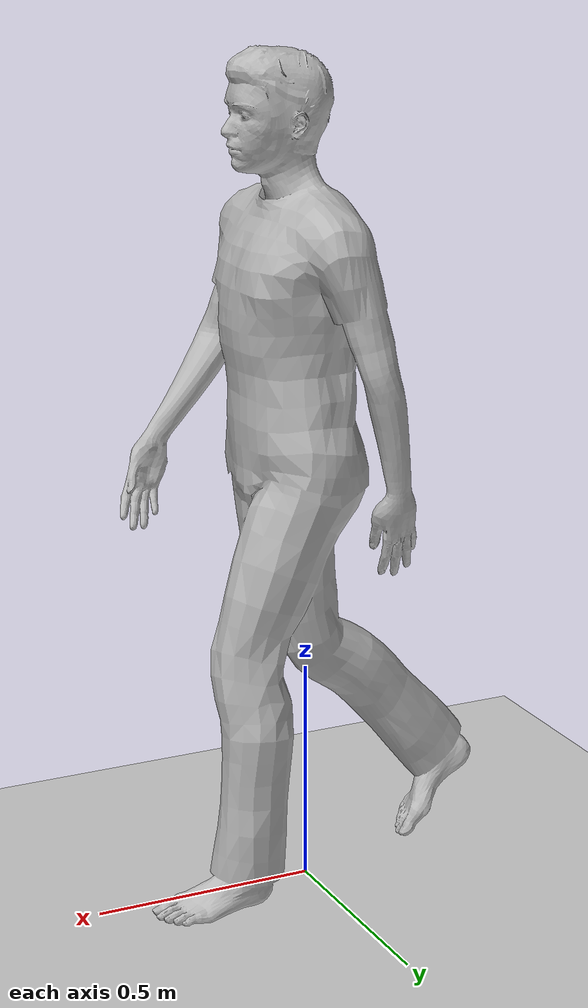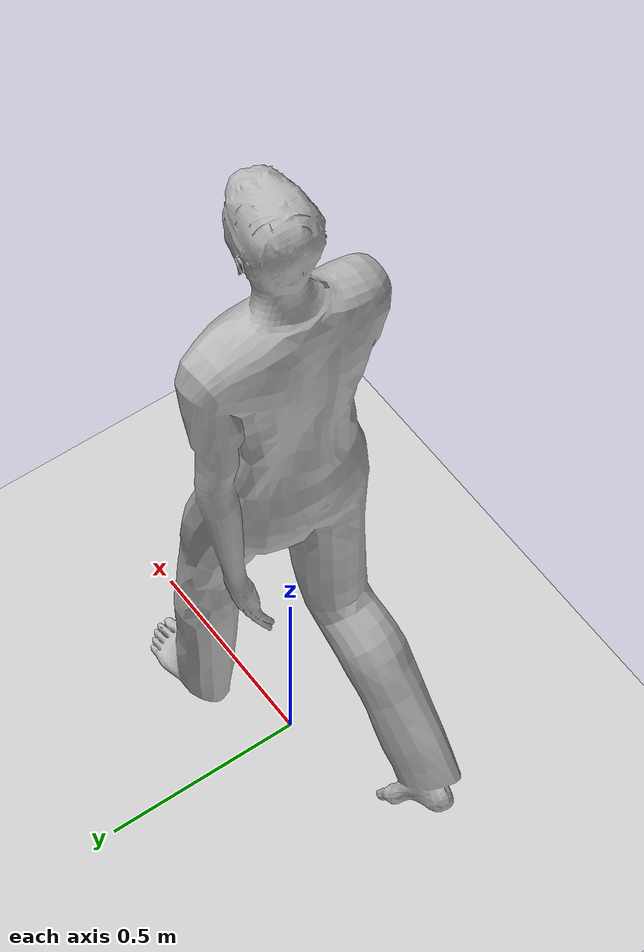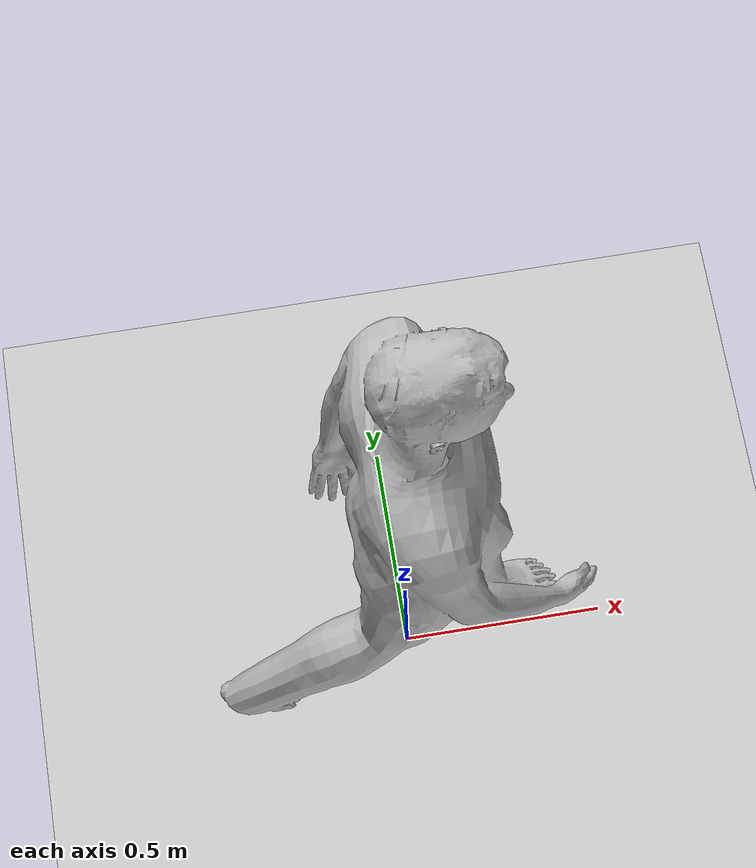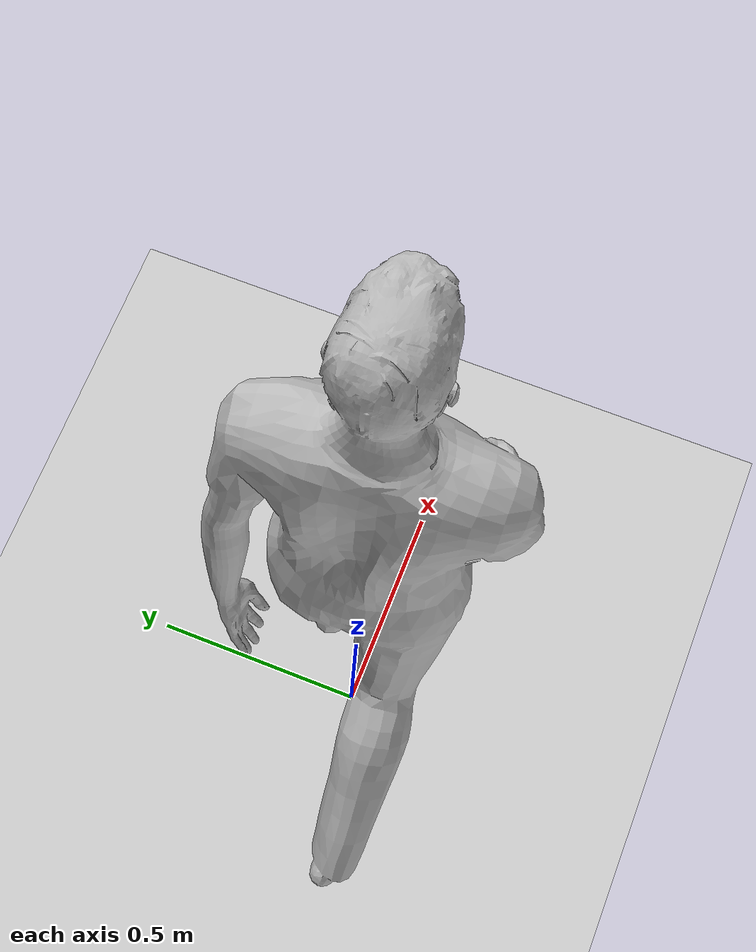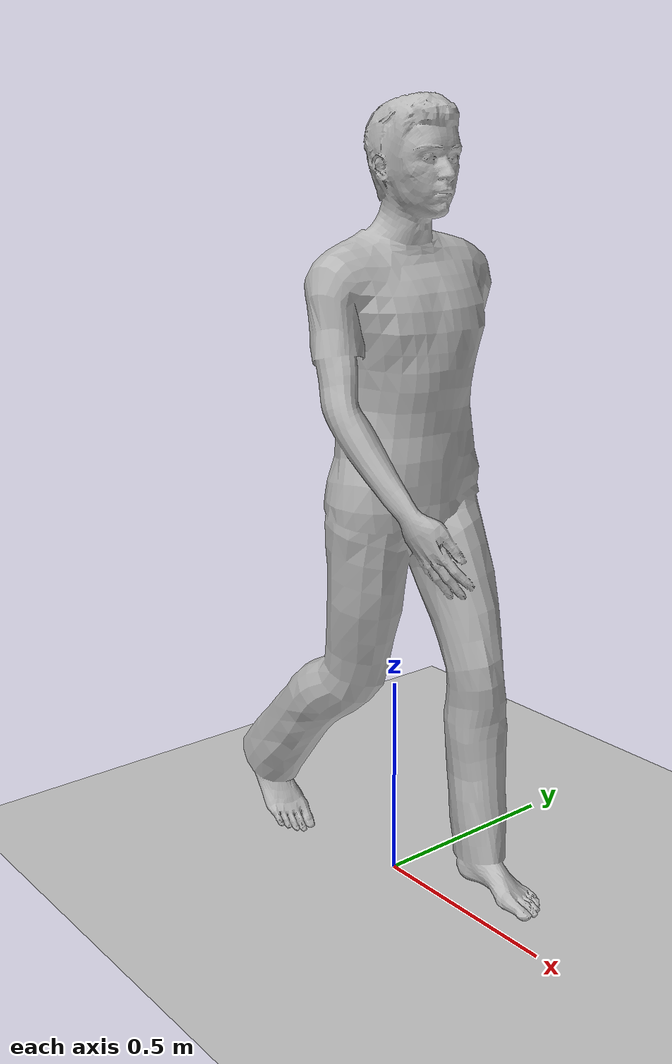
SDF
<?xml version="1.0" ?>
<sdf version="1.4">
  <world name="default">
    <include>
      <uri>model://ground_plane</uri>
    </include>
    <include>
      <uri>model://sun</uri>
    </include>

    <!-- Include human target -->
    <include>
      <uri>model://target</uri>
      <pose>0 0 0 0 0 0</pose>
      <name>target</name>
    </include>

    <!-- Only require one ROS interface plugin per world, as any other plugin can connect a Gazebo
        topic to a ROS topic (or vise versa). -->
    <plugin name="ros_interface_plugin" filename="librotors_gazebo_ros_interface_plugin.so"></plugin>

    <spherical_coordinates>
      <surface_model>EARTH_WGS84</surface_model>
      <latitude_deg>47.3667</latitude_deg>
      <longitude_deg>8.5500</longitude_deg>
      <elevation>500.0</elevation>
      <heading_deg>0</heading_deg>
    </spherical_coordinates>
    <physics type='ode'>
      <ode>
        <solver>
          <type>quick</type>
          <iters>1000</iters>
          <sor>1.3</sor>
        </solver>
        <constraints>
          <cfm>0</cfm>
          <erp>0.2</erp>
          <contact_max_correcting_vel>100</contact_max_correcting_vel>
          <contact_surface_layer>0.001</contact_surface_layer>
        </constraints>
      </ode>
      <max_step_size>0.004</max_step_size>
      <real_time_factor>1</real_time_factor>
      <real_time_update_rate>250</real_time_update_rate>
      <gravity>0 0 -9.8</gravity>
    </physics>
  </world>
</sdf>

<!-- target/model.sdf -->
<sdf version="1.6">
  <model name="target">
    <link name="link">
      <inertial>
        <pose>0 0 0.95 0 0 1.57</pose>
        <mass>80.0</mass>
        <inertia>
          <ixx>27.82</ixx>
          <ixy>0</ixy>
          <ixz>0</ixz>
          <iyy>24.88</iyy>
          <iyz>0</iyz>
          <izz>4.57</izz>
        </inertia>
      </inertial>

      <collision name="bottom">
        <pose>0 0 0.01 0 0 1.57</pose>
        <geometry>
          <box>
            <size>0.35 0.75 0.02</size>
          </box>
        </geometry>
      </collision>

      <collision name="person">
        <pose>0 0 -0.02 0 0 1.57 </pose>
        <geometry>
          <mesh>
            <uri>model://target/meshes/walking.dae</uri>
          </mesh>
        </geometry>
      </collision>

      <visual name="visual">
        <pose>0 0 -0.02 0 0 1.57</pose>
        <geometry>
          <mesh>
            <uri>model://target/meshes/walking.dae</uri>
          </mesh>
        </geometry>
      </visual>
    </link>
       <plugin name="target_plugin" filename="libmultidrone_simulator.so">>
       </plugin>
  </model>
</sdf>
